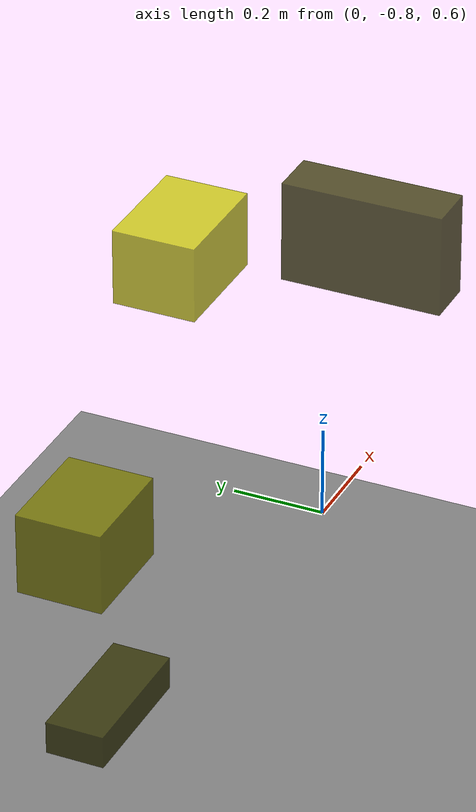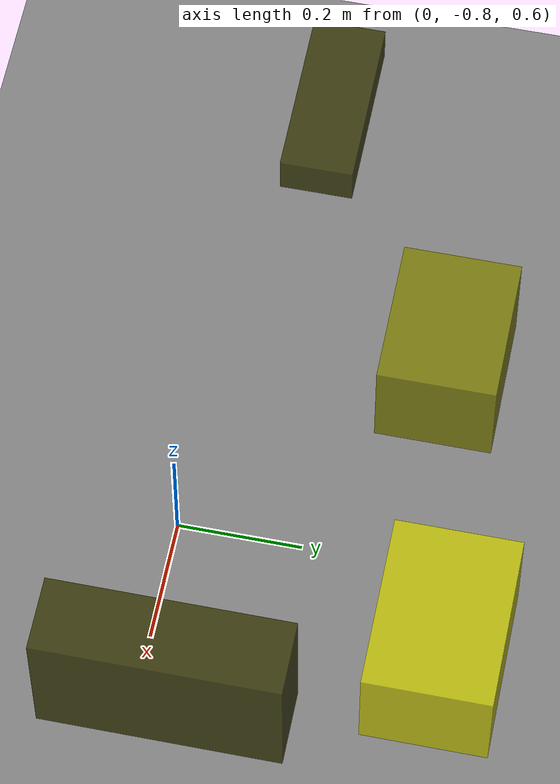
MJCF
<?xml version="1.0"?>
<mujoco model="obstacle_scene">
  <compiler angle="radian" coordinate="local"/>
  <option timestep="0.001" gravity="0 0 -9.81"/>

  <asset>
    <material name="obstacle_mat" rgba="0.8 0.8 0.0 0.8"/>
    <material name="ground_mat" rgba="0.5 0.5 0.5 1"/>
  </asset>

  <worldbody>
    <!-- Ground plane -->
    <geom name="ground" type="plane" size="3 3 0.1" material="ground_mat"/>

    <!-- Obstacles -->
    <body name="obstacle_0" pos="0.441154 -0.711829 1.006404">
      <geom name="obs_0" type="box" size="0.055899 0.181738 0.115870" rgba="0.2 0.2 0.0 0.8"/>
    </body>
    <body name="obstacle_1" pos="-0.363747 -0.433559 0.661800">
      <geom name="obs_1" type="box" size="0.121033 0.095455 0.092781" rgba="0.5 0.5 0.0 0.8"/>
    </body>
    <body name="obstacle_2" pos="0.293847 -0.337495 0.967739">
      <geom name="obs_2" type="box" size="0.131865 0.094636 0.087373" rgba="0.8 0.8 0.0 0.8"/>
    </body>
    <body name="obstacle_3" pos="-0.819500 -0.709350 0.614720">
      <geom name="obs_3" type="box" size="0.148263 0.061303 0.035308" rgba="0.2 0.2 0.0 0.8"/>
    </body>
  </worldbody>
</mujoco>
